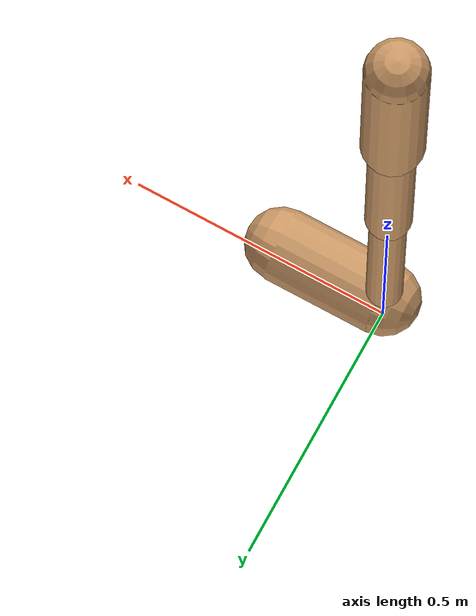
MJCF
<mujoco model="walker2d">
  <compiler angle="degree" coordinate="global" inertiafromgeom="true" />
  <default>
    <joint armature="0.01" damping=".1" limited="true" />
    <geom conaffinity="0" condim="3" contype="1" density="1000" friction="0.8 .1 .1" rgba="0.8 0.6 .4 1" />
  </default>
  <option integrator="RK4" timestep="0.002" />
  <worldbody>

    <body name="torso" pos="0 0 -0.03509466691779739">
      <joint armature="0" axis="1 0 0" damping="0" limited="false" name="ignorex" pos="0 0 0" stiffness="0" type="slide" />
      <joint armature="0" axis="0 0 1" damping="0" limited="false" name="ignorez" pos="0 0 0" ref="1.25" stiffness="0" type="slide" />
      <joint armature="0" axis="0 1 0" damping="0" limited="false" name="ignorey" pos="0 0 0" stiffness="0" type="hinge" />
      <geom fromto="0 0 1.45 0 0 1.05" name="torso_geom" size="0.05548656647231325" type="capsule" />
      <body name="thigh">
        <joint axis="0 -1 0" name="thigh_joint" pos="0 0 1.05" range="-150 0" type="hinge" />
        <geom fromto="0.0 0.0 1.05 0.0 0.0 0.6166237895926409" name="thigh_geom" size="0.041824283842138044" type="capsule" />
        <body name="leg" pos="0.0 0.0 0.01662378959264088">
          <joint axis="0 -1 0" name="leg_joint" pos="0 0 0.6" range="-150 0" type="hinge" />
          <geom fromto="0.0 0.0 0.6 0.0 0.0 0.11847087732515653" name="leg_geom" size="0.033459427073710434" type="capsule" />
          <body name="foot" pos="0.0 0.0 0.018470877325156523">
            <joint axis="0 -1 0" name="foot_joint" pos="0 0 0.1" range="-45 45" type="hinge" />
            <geom fromto="-0.0 0.0 0.10000000000000002 0.20571265063458563 0.0 0.10000000000000002" name="foot_geom" size="0.06826643580518343" type="capsule" />
          </body>
        </body>
      </body>

      <body name="thigh_left">
        <joint axis="0 -1 0" name="thigh_left_joint" pos="0 0 1.05" range="-150 0" type="hinge" />
        <geom fromto="0.0 0.0 1.05 0.0 0.0 0.6166237895926409" name="thigh_left_geom" rgba=".7 .3 .6 1" size="0.041824283842138044" type="capsule" />
        <body name="leg_left" pos="0.0 0.0 0.01662378959264088">
          <joint axis="0 -1 0" name="leg_left_joint" pos="0 0 0.6" range="-150 0" type="hinge" />
          <geom fromto="0.0 0.0 0.6 0.0 0.0 0.11847087732515653" name="leg_left_geom" rgba=".7 .3 .6 1" size="0.033459427073710434" type="capsule" />
          <body name="foot_left" pos="0.0 0.0 0.018470877325156523">
            <joint axis="0 -1 0" name="foot_left_joint" pos="0 0 0.1" range="-45 45" type="hinge" />
            <geom fromto="-0.0 0.0 0.10000000000000002 0.20571265063458563 0.0 0.10000000000000002" name="foot_left_geom" rgba=".7 .3 .6 1" size="0.06826643580518343" type="capsule" />
          </body>
        </body>
      </body>
    </body>
  </worldbody>
  <actuator>

    <motor ctrllimited="true" ctrlrange="-1.0 1.0" gear="100" joint="thigh_joint" />
    <motor ctrllimited="true" ctrlrange="-1.0 1.0" gear="100" joint="leg_joint" />
    <motor ctrllimited="true" ctrlrange="-1.0 1.0" gear="100" joint="foot_joint" />
    <motor ctrllimited="true" ctrlrange="-1.0 1.0" gear="100" joint="thigh_left_joint" />
    <motor ctrllimited="true" ctrlrange="-1.0 1.0" gear="100" joint="leg_left_joint" />
    <motor ctrllimited="true" ctrlrange="-1.0 1.0" gear="100" joint="foot_left_joint" />

  </actuator>
</mujoco>
